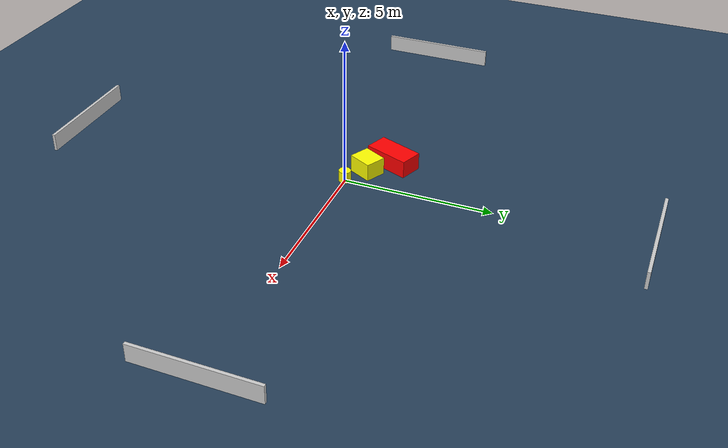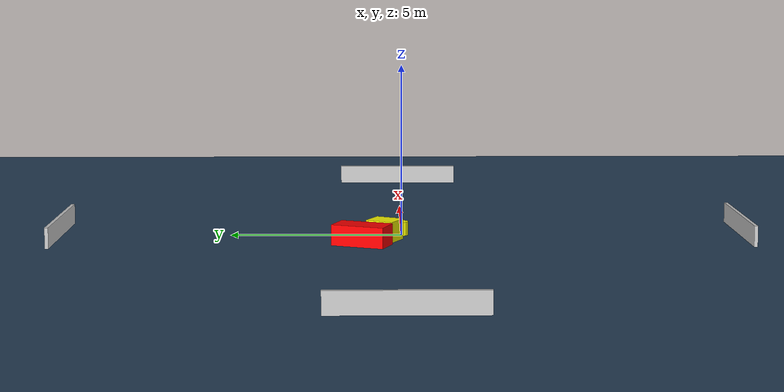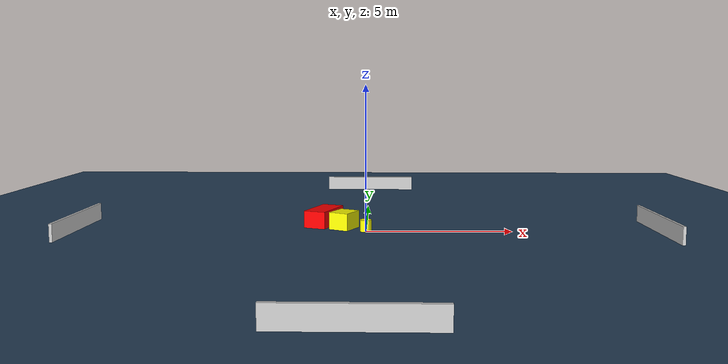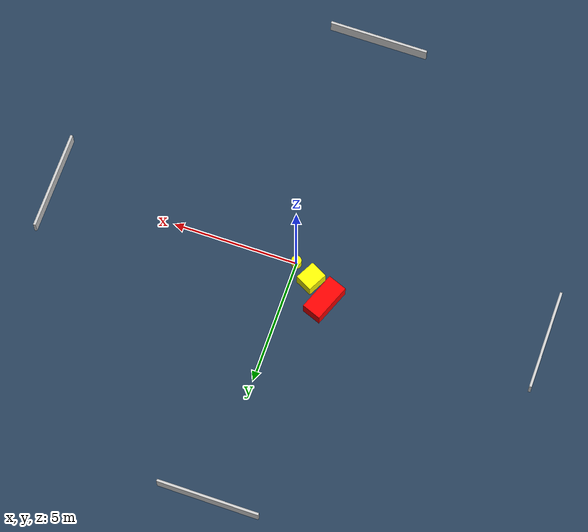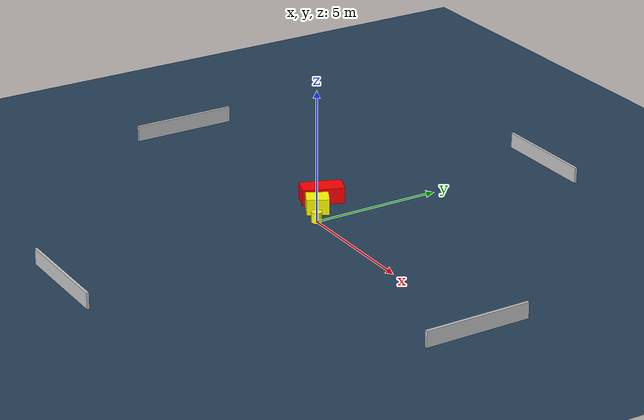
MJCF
<?xml version="1.0" ?>
<mujoco model="generated_environment">
  <option timestep="0.01" integrator="RK4" cone="elliptic"/>
  <default>
    <geom density="1"/>
  </default>
  <asset>
    <texture builtin="gradient" height="3072" name="skybox" rgb1="0.3 0.5 0.7" rgb2="0 0 0" type="skybox" width="512"/>
    <texture builtin="checker" height="300" name="groundplane" rgb1="0.2 0.3 0.4" rgb2="0.1 0.2 0.3" type="2d" width="300"/>
    <material name="groundplane" reflectance="0.2" texrepeat="5 5" texture="groundplane"/>
  </asset>
  <worldbody>
    <light dir="0 0 -1" directional="true" pos="0 0 1.5"/>
    <geom condim="3" friction="0.5 0.005 0.001" material="groundplane" name="floor" pos="0 0 0" size="0 0 0.05" type="plane"/>
    <body name="walls">
      <geom name="wall_1" condim="4" pos="-10.0 0.0 0.3" rgba="0.800000011920929 0.800000011920929 0.800000011920929 1.0" size="0.05 2.0 0.3" type="box"/>
      <geom name="wall_2" condim="4" pos="10.0 0.0 0.3" rgba="0.800000011920929 0.800000011920929 0.800000011920929 1.0" size="0.05 2.0 0.3" type="box"/>
      <geom name="wall_3" condim="4" pos="0.0 -10.0 0.3" rgba="0.800000011920929 0.800000011920929 0.800000011920929 1.0" size="2.0 0.05 0.3" type="box"/>
      <geom name="wall_4" condim="4" pos="0.0 10.0 0.3" rgba="0.800000011920929 0.800000011920929 0.800000011920929 1.0" size="2.0 0.05 0.3" type="box"/>
    </body>
    <body name="robot">
      <joint name="joint_x" type="slide" pos="0 0 0" axis="1 0 0"/>
      <joint name="joint_y" type="slide" pos="0 0 0" axis="0 1 0"/>
      <geom name="robot" type="cylinder" pos="0.0 0.0 0.2" size="0.2 0.2 0.0" mass="5.0" friction="1.0 0.005 0.0001" condim="4" rgba="1.0 1.0 0.0 1.0"/>
    </body>
    <body name="obstacle_1_movable">
      <geom name="obstacle_1_movable" condim="4" pos="-0.7686654937835442 0.4970308885524238 0.3" euler="0 0 62.47526609667191" friction="0.0 0.005 0.001" rgba="1.0 1.0 0.0 1.0" size="0.41938733385089505 0.3591653207198594 0.3" type="box" mass="0.1"/>
      <joint type="free"/>
    </body>
    <body name="obstacle_2_static">
      <geom name="obstacle_2_static" condim="4" pos="-1.5223183566584961 1.139487026848152 0.3" euler="0 0 248.8314944756111" friction="0.0 0.005 0.001" rgba="1.0 0.0 0.0 1.0" size="0.7847950697507888 0.3947422995828522 0.3" type="box"/>
    </body>
  </worldbody>
  <actuator>
    <motor name="actuator_x" joint="joint_x" gear="1" ctrlrange="-1 1"/>
    <motor name="actuator_y" joint="joint_y" gear="1" ctrlrange="-1 1"/>
  </actuator>
</mujoco>
